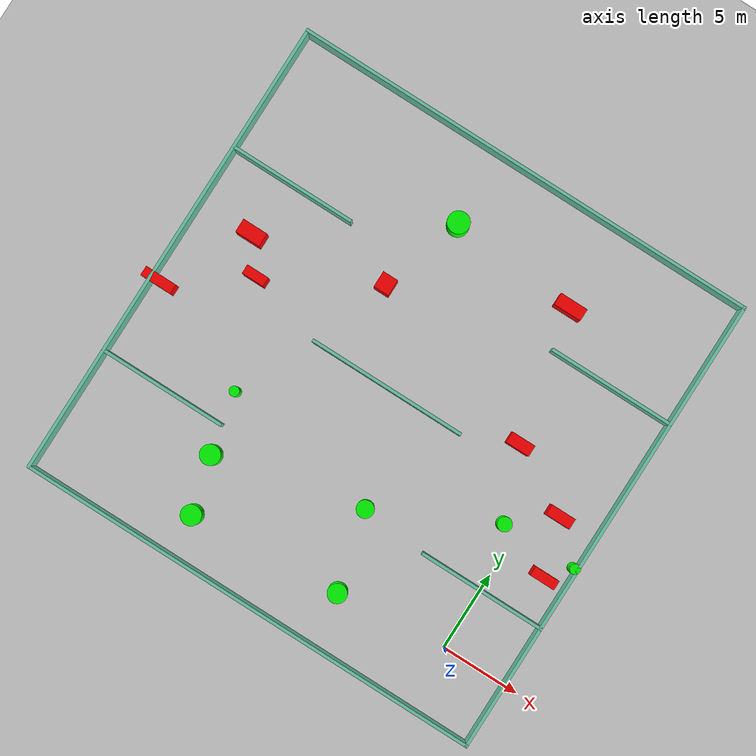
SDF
<sdf version="1.7">
 <world name="default">
  <light name="sun" type="directional">
   <pose>0 0 10 0 -0 0</pose>
   <diffuse>0.8 0.8 0.8 1</diffuse>
   <specular>0.2 0.2 0.2 1</specular>
   <attenuation>
    <range>1000</range>
    <constant>0.9</constant>
    <linear>0.01</linear>
    <quadratic>0.001</quadratic>
   </attenuation>
   <direction>-0.5 0.1 -0.9</direction>
   <spot><inner_angle>0</inner_angle><outer_angle>0</outer_angle><falloff>0</falloff></spot>
  </light>
  <model name="ground_plane">
   <static>1</static>
   <link name="link">
    <collision name="collision">
     <geometry><plane><normal>0 0 1</normal><size>100 100</size></plane></geometry>
     <surface>
      <contact><collide_bitmask>65535</collide_bitmask></contact>
      <friction><ode><mu>100</mu><mu2>50</mu2></ode></friction>
     </surface>
    </collision>
    <visual name="visual">
     <cast_shadows>0</cast_shadows>
     <geometry><plane><normal>0 0 1</normal><size>100 100</size></plane></geometry>
     <material>
      <script><uri>file://media/materials/scripts/gazebo.material</uri><name>Gazebo/Grey</name></script>
     </material>
    </visual>
   </link>
  </model>
  <gravity>0 0 -9.8</gravity>
  <magnetic_field>6e-06 2.3e-05 -4.2e-05</magnetic_field>
  <atmosphere type="adiabatic"/>
  <physics type="ode">
   <max_step_size>0.001</max_step_size>
   <real_time_factor>1</real_time_factor>
   <real_time_update_rate>1000</real_time_update_rate>
  </physics>
  <scene><ambient>0.4 0.4 0.4 1</ambient><background>0.7 0.7 0.7 1</background><shadows>1</shadows></scene>
  <spherical_coordinates>
   <surface_model>EARTH_WGS84</surface_model>
   <latitude_deg>0</latitude_deg>
   <longitude_deg>0</longitude_deg>
   <elevation>0</elevation>
   <heading_deg>0</heading_deg>
  </spherical_coordinates>
  <model name="my_base_walls">
   <link name="Wall_10">
    <collision name="Wall_10_Collision">
     <geometry><box><size>8.2 0.2 2.5</size></box></geometry>
     <pose>0 0 1.25 0 -0 0</pose>
    </collision>
    <visual name="Wall_10_Visual">
     <pose>0 0 1.25 0 -0 0</pose>
     <geometry><box><size>8.2 0.2 2.5</size></box></geometry>
     <material>
      <script><uri>file://media/materials/scripts/gazebo.material</uri><name>Gazebo/Grey</name></script>
      <ambient>0.435294 0.796078 0.67451 1</ambient>
     </material>
     <meta><layer>0</layer></meta>
    </visual>
    <pose>-11 -7 0 0 -0 0</pose>
   </link>
   <link name="Wall_12">
    <collision name="Wall_12_Collision">
     <geometry><box><size>8.2 0.2 2.5</size></box></geometry>
     <pose>0 0 1.25 0 -0 0</pose>
    </collision>
    <visual name="Wall_12_Visual">
     <pose>0 0 1.25 0 -0 0</pose>
     <geometry><box><size>8.2 0.2 2.5</size></box></geometry>
     <material>
      <script><uri>file://media/materials/scripts/gazebo.material</uri><name>Gazebo/Grey</name></script>
      <ambient>0.435294 0.796078 0.67451 1</ambient>
     </material>
     <meta><layer>0</layer></meta>
    </visual>
    <pose>-11 7 0 0 -0 0</pose>
   </link>
   <link name="Wall_14">
    <collision name="Wall_14_Collision">
     <geometry><box><size>8.2 0.2 2.5</size></box></geometry>
     <pose>0 0 1.25 0 -0 0</pose>
    </collision>
    <visual name="Wall_14_Visual">
     <pose>0 0 1.25 0 -0 0</pose>
     <geometry><box><size>8.2 0.2 2.5</size></box></geometry>
     <material>
      <script><uri>file://media/materials/scripts/gazebo.material</uri><name>Gazebo/Grey</name></script>
      <ambient>0.435294 0.796078 0.67451 1</ambient>
     </material>
     <meta><layer>0</layer></meta>
    </visual>
    <pose>11 7 0 0 -0 3.14159</pose>
   </link>
   <link name="Wall_16">
    <collision name="Wall_16_Collision">
     <geometry><box><size>10.2 0.2 2.5</size></box></geometry>
     <pose>0 0 1.25 0 -0 0</pose>
    </collision>
    <visual name="Wall_16_Visual">
     <pose>0 0 1.25 0 -0 0</pose>
     <geometry><box><size>10.2 0.2 2.5</size></box></geometry>
     <material>
      <script><uri>file://media/materials/scripts/gazebo.material</uri><name>Gazebo/Grey</name></script>
      <ambient>0.435294 0.796078 0.67451 1</ambient>
     </material>
     <meta><layer>0</layer></meta>
    </visual>
    <pose>0 0 0 0 -0 3.14159</pose>
   </link>
   <link name="Wall_2">
    <collision name="Wall_2_Collision">
     <geometry><box><size>30.2 0.2 2.5</size></box></geometry>
     <pose>0 0 1.25 0 -0 0</pose>
    </collision>
    <visual name="Wall_2_Visual">
     <pose>0 0 1.25 0 -0 0</pose>
     <geometry><box><size>30.2 0.2 2.5</size></box></geometry>
     <material>
      <script><uri>file://media/materials/scripts/gazebo.material</uri><name>Gazebo/Grey</name></script>
      <ambient>0.435294 0.796078 0.67451 1</ambient>
     </material>
     <meta><layer>0</layer></meta>
    </visual>
    <pose>0 -15 0 0 -0 3.14159</pose>
   </link>
   <link name="Wall_3">
    <collision name="Wall_3_Collision">
     <geometry><box><size>30.2 0.2 2.5</size></box></geometry>
     <pose>0 0 1.25 0 -0 0</pose>
    </collision>
    <visual name="Wall_3_Visual">
     <pose>0 0 1.25 0 -0 0</pose>
     <geometry><box><size>30.2 0.2 2.5</size></box></geometry>
     <material>
      <script><uri>file://media/materials/scripts/gazebo.material</uri><name>Gazebo/Grey</name></script>
      <ambient>0.435294 0.796078 0.67451 1</ambient>
     </material>
     <meta><layer>0</layer></meta>
    </visual>
    <pose>-15 0 0 0 -0 1.5708</pose>
   </link>
   <link name="Wall_4">
    <collision name="Wall_4_Collision">
     <geometry><box><size>30.2 0.2 2.5</size></box></geometry>
     <pose>0 0 1.25 0 -0 0</pose>
    </collision>
    <visual name="Wall_4_Visual">
     <pose>0 0 1.25 0 -0 0</pose>
     <geometry><box><size>30.2 0.2 2.5</size></box></geometry>
     <material>
      <script><uri>file://media/materials/scripts/gazebo.material</uri><name>Gazebo/Grey</name></script>
      <ambient>0.435294 0.796078 0.67451 1</ambient>
     </material>
     <meta><layer>0</layer></meta>
    </visual>
    <pose>0 15 0 0 -0 0</pose>
   </link>
   <link name="Wall_6">
    <collision name="Wall_6_Collision">
     <geometry><box><size>30.2 0.2 2.5</size></box></geometry>
     <pose>0 0 1.25 0 -0 0</pose>
    </collision>
    <visual name="Wall_6_Visual">
     <pose>0 0 1.25 0 -0 0</pose>
     <geometry><box><size>30.2 0.2 2.5</size></box></geometry>
     <material>
      <script><uri>file://media/materials/scripts/gazebo.material</uri><name>Gazebo/Grey</name></script>
      <ambient>0.435294 0.796078 0.67451 1</ambient>
     </material>
     <meta><layer>0</layer></meta>
    </visual>
    <pose>15 0 0 0 -0 1.5708</pose>
   </link>
   <link name="Wall_8">
    <collision name="Wall_8_Collision">
     <geometry><box><size>8.2 0.2 2.5</size></box></geometry>
     <pose>0 0 1.25 0 -0 0</pose>
    </collision>
    <visual name="Wall_8_Visual">
     <pose>0 0 1.25 0 -0 0</pose>
     <geometry><box><size>8.2 0.2 2.5</size></box></geometry>
     <material>
      <script><uri>file://media/materials/scripts/gazebo.material</uri><name>Gazebo/Grey</name></script>
      <ambient>0.435294 0.796078 0.67451 1</ambient>
     </material>
     <meta><layer>0</layer></meta>
    </visual>
    <pose>11 -7 0 0 -0 3.14159</pose>
   </link>
   <static>1</static>
   <pose>-11 11 0 0 -0 0</pose>
  </model>
  <model name="cylinder1">
   <static>1</static>
   <link name="link">
    <inertial>
     <mass>1</mass>
     <inertia><ixx>0.5</ixx><ixy>0</ixy><ixz>0</ixz><iyy>0.5</iyy><iyz>0</iyz><izz>1</izz></inertia>
    </inertial>
    <collision name="collision">
     <geometry><cylinder><radius>0.6346139603693233</radius><length>2.5</length></cylinder></geometry>
    </collision>
    <visual name="visual">
     <geometry><cylinder><radius>0.6346139603693233</radius><length>2.5</length></cylinder></geometry>
     <material>
      <ambient>0 1 0 1</ambient>
      <diffuse>0 1 0 1</diffuse>
      <specular>0.1 0.1 0.1 1</specular>
      <emissive>0 0 0 0</emissive>
     </material>
    </visual>
   </link>
   <pose>-16.571998340700368 -1.3238653254842028 1.25 0 0 0</pose>
  </model>
  <model name="cylinder2">
   <static>1</static>
   <link name="link">
    <inertial>
     <mass>1</mass>
     <inertia><ixx>0.5</ixx><ixy>0</ixy><ixz>0</ixz><iyy>0.5</iyy><iyz>0</iyz><izz>1</izz></inertia>
    </inertial>
    <collision name="collision">
     <geometry><cylinder><radius>0.45152356649810066</radius><length>2.5</length></cylinder></geometry>
    </collision>
    <visual name="visual">
     <geometry><cylinder><radius>0.45152356649810066</radius><length>2.5</length></cylinder></geometry>
     <material>
      <ambient>0 1 0 1</ambient>
      <diffuse>0 1 0 1</diffuse>
      <specular>0.1 0.1 0.1 1</specular>
      <emissive>0 0 0 0</emissive>
     </material>
    </visual>
   </link>
   <pose>-0.9904161919719563 7.980079243447275 1.25 0 0 0</pose>
  </model>
  <model name="cylinder3">
   <static>1</static>
   <link name="link">
    <inertial>
     <mass>1</mass>
     <inertia><ixx>0.5</ixx><ixy>0</ixy><ixz>0</ixz><iyy>0.5</iyy><iyz>0</iyz><izz>1</izz></inertia>
    </inertial>
    <collision name="collision">
     <geometry><cylinder><radius>0.3263668381568995</radius><length>2.5</length></cylinder></geometry>
    </collision>
    <visual name="visual">
     <geometry><cylinder><radius>0.3263668381568995</radius><length>2.5</length></cylinder></geometry>
     <material>
      <ambient>0 1 0 1</ambient>
      <diffuse>0 1 0 1</diffuse>
      <specular>0.1 0.1 0.1 1</specular>
      <emissive>0 0 0 0</emissive>
     </material>
    </visual>
   </link>
   <pose>3.827052140149366 7.973266102477812 1.25 0 0 0</pose>
  </model>
  <model name="cylinder4">
   <static>1</static>
   <link name="link">
    <inertial>
     <mass>1</mass>
     <inertia><ixx>0.5</ixx><ixy>0</ixy><ixz>0</ixz><iyy>0.5</iyy><iyz>0</iyz><izz>1</izz></inertia>
    </inertial>
    <collision name="collision">
     <geometry><cylinder><radius>0.54239967455031</radius><length>2.5</length></cylinder></geometry>
    </collision>
    <visual name="visual">
     <geometry><cylinder><radius>0.54239967455031</radius><length>2.5</length></cylinder></geometry>
     <material>
      <ambient>0 1 0 1</ambient>
      <diffuse>0 1 0 1</diffuse>
      <specular>0.1 0.1 0.1 1</specular>
      <emissive>0 0 0 0</emissive>
     </material>
    </visual>
   </link>
   <pose>-8.263736374935718 4.377930634792868 1.25 0 0 0</pose>
  </model>
  <model name="cylinder5">
   <static>1</static>
   <link name="link">
    <inertial>
     <mass>1</mass>
     <inertia><ixx>0.5</ixx><ixy>0</ixy><ixz>0</ixz><iyy>0.5</iyy><iyz>0</iyz><izz>1</izz></inertia>
    </inertial>
    <collision name="collision">
     <geometry><cylinder><radius>0.3141391837727115</radius><length>2.5</length></cylinder></geometry>
    </collision>
    <visual name="visual">
     <geometry><cylinder><radius>0.3141391837727115</radius><length>2.5</length></cylinder></geometry>
     <material>
      <ambient>0 1 0 1</ambient>
      <diffuse>0 1 0 1</diffuse>
      <specular>0.1 0.1 0.1 1</specular>
      <emissive>0 0 0 0</emissive>
     </material>
    </visual>
   </link>
   <pose>-18.32279944301617 6.062641862050814 1.25 0 0 0</pose>
  </model>
  <model name="cylinder6">
   <static>1</static>
   <link name="link">
    <inertial>
     <mass>1</mass>
     <inertia><ixx>0.5</ixx><ixy>0</ixy><ixz>0</ixz><iyy>0.5</iyy><iyz>0</iyz><izz>1</izz></inertia>
    </inertial>
    <collision name="collision">
     <geometry><cylinder><radius>0.6020453340713285</radius><length>2.5</length></cylinder></geometry>
    </collision>
    <visual name="visual">
     <geometry><cylinder><radius>0.6020453340713285</radius><length>2.5</length></cylinder></geometry>
     <material>
      <ambient>0 1 0 1</ambient>
      <diffuse>0 1 0 1</diffuse>
      <specular>0.1 0.1 0.1 1</specular>
      <emissive>0 0 0 0</emissive>
     </material>
    </visual>
   </link>
   <pose>-7.006150141941692 -0.5919044858297418 1.25 0 0 0</pose>
  </model>
  <model name="cylinder7">
   <static>1</static>
   <link name="link">
    <inertial>
     <mass>1</mass>
     <inertia><ixx>0.5</ixx><ixy>0</ixy><ixz>0</ixz><iyy>0.5</iyy><iyz>0</iyz><izz>1</izz></inertia>
    </inertial>
    <collision name="collision">
     <geometry><cylinder><radius>0.6895013769846164</radius><length>2.5</length></cylinder></geometry>
    </collision>
    <visual name="visual">
     <geometry><cylinder><radius>0.6895013769846164</radius><length>2.5</length></cylinder></geometry>
     <material>
      <ambient>0 1 0 1</ambient>
      <diffuse>0 1 0 1</diffuse>
      <specular>0.1 0.1 0.1 1</specular>
      <emissive>0 0 0 0</emissive>
     </material>
    </visual>
   </link>
   <pose>-12.622188816440719 21.28873632441184 1.25 0 0 0</pose>
  </model>
  <model name="cylinder8">
   <static>1</static>
   <link name="link">
    <inertial>
     <mass>1</mass>
     <inertia><ixx>0.5</ixx><ixy>0</ixy><ixz>0</ixz><iyy>0.5</iyy><iyz>0</iyz><izz>1</izz></inertia>
    </inertial>
    <collision name="collision">
     <geometry><cylinder><radius>0.6329952617301624</radius><length>2.5</length></cylinder></geometry>
    </collision>
    <visual name="visual">
     <geometry><cylinder><radius>0.6329952617301624</radius><length>2.5</length></cylinder></geometry>
     <material>
      <ambient>0 1 0 1</ambient>
      <diffuse>0 1 0 1</diffuse>
      <specular>0.1 0.1 0.1 1</specular>
      <emissive>0 0 0 0</emissive>
     </material>
    </visual>
   </link>
   <pose>-17.518286007079652 2.2073546053420348 1.25 0 0 0</pose>
  </model>
  <model name="box1">
   <static>1</static>
   <link name="link">
    <inertial>
     <mass>1</mass>
     <inertia><ixx>0.083</ixx><ixy>0</ixy><ixz>0</ixz><iyy>0.083</iyy><iyz>0</iyz><izz>0.083</izz></inertia>
    </inertial>
    <collision name="collision">
     <geometry><box><size>1.6057909070444991 0.6815243536844979 2.5</size></box></geometry>
    </collision>
    <visual name="visual">
     <geometry><box><size>1.6057909070444991 0.6815243536844979 2.5</size></box></geometry>
     <material>
      <ambient>1 0 0 1</ambient>
      <diffuse>1 0 0 1</diffuse>
      <specular>0.1 0.1 0.1 1</specular>
      <emissive>0 0 0 0</emissive>
     </material>
    </visual>
    <sensor name="my_contact" type="contact">
     <contact><collision>box_collision</collision><topic>__default_topic__</topic></contact>
    </sensor>
   </link>
   <pose>1.5104454753566259 10.078756739486984 1.25 0 0 0</pose>
  </model>
  <model name="box2">
   <static>1</static>
   <link name="link">
    <inertial>
     <mass>1</mass>
     <inertia><ixx>0.083</ixx><ixy>0</ixy><ixz>0</ixz><iyy>0.083</iyy><iyz>0</iyz><izz>0.083</izz></inertia>
    </inertial>
    <collision name="collision">
     <geometry><box><size>2.0321008207585143 0.6180543607187592 2.5</size></box></geometry>
    </collision>
    <visual name="visual">
     <geometry><box><size>2.0321008207585143 0.6180543607187592 2.5</size></box></geometry>
     <material>
      <ambient>1 0 0 1</ambient>
      <diffuse>1 0 0 1</diffuse>
      <specular>0.1 0.1 0.1 1</specular>
      <emissive>0 0 0 0</emissive>
     </material>
    </visual>
    <sensor name="my_contact" type="contact">
     <contact><collision>box_collision</collision><topic>__default_topic__</topic></contact>
    </sensor>
   </link>
   <pose>-25.504466478019157 9.127489881615418 1.25 0 0 0</pose>
  </model>
  <model name="box3">
   <static>1</static>
   <link name="link">
    <inertial>
     <mass>1</mass>
     <inertia><ixx>0.083</ixx><ixy>0</ixy><ixz>0</ixz><iyy>0.083</iyy><iyz>0</iyz><izz>0.083</izz></inertia>
    </inertial>
    <collision name="collision">
     <geometry><box><size>1.611499505487951 0.8724854681147787 2.5</size></box></geometry>
    </collision>
    <visual name="visual">
     <geometry><box><size>1.611499505487951 0.8724854681147787 2.5</size></box></geometry>
     <material>
      <ambient>1 0 0 1</ambient>
      <diffuse>1 0 0 1</diffuse>
      <specular>0.1 0.1 0.1 1</specular>
      <emissive>0 0 0 0</emissive>
     </material>
    </visual>
    <sensor name="my_contact" type="contact">
     <contact><collision>box_collision</collision><topic>__default_topic__</topic></contact>
    </sensor>
   </link>
   <pose>-22.432379274314048 14.328358544511836 1.25 0 0 0</pose>
  </model>
  <model name="box4">
   <static>1</static>
   <link name="link">
    <inertial>
     <mass>1</mass>
     <inertia><ixx>0.083</ixx><ixy>0</ixy><ixz>0</ixz><iyy>0.083</iyy><iyz>0</iyz><izz>0.083</izz></inertia>
    </inertial>
    <collision name="collision">
     <geometry><box><size>0.9893468385382376 1.041177000742564 2.5</size></box></geometry>
    </collision>
    <visual name="visual">
     <geometry><box><size>0.9893468385382376 1.041177000742564 2.5</size></box></geometry>
     <material>
      <ambient>1 0 0 1</ambient>
      <diffuse>1 0 0 1</diffuse>
      <specular>0.1 0.1 0.1 1</specular>
      <emissive>0 0 0 0</emissive>
     </material>
    </visual>
    <sensor name="my_contact" type="contact">
     <contact><collision>box_collision</collision><topic>__default_topic__</topic></contact>
    </sensor>
   </link>
   <pose>-14.276775703881533 16.03733064699001 1.25 0 0 0</pose>
  </model>
  <model name="box5">
   <static>1</static>
   <link name="link">
    <inertial>
     <mass>1</mass>
     <inertia><ixx>0.083</ixx><ixy>0</ixy><ixz>0</ixz><iyy>0.083</iyy><iyz>0</iyz><izz>0.083</izz></inertia>
    </inertial>
    <collision name="collision">
     <geometry><box><size>1.6191367735722701 0.6068481923277689 2.5</size></box></geometry>
    </collision>
    <visual name="visual">
     <geometry><box><size>1.6191367735722701 0.6068481923277689 2.5</size></box></geometry>
     <material>
      <ambient>1 0 0 1</ambient>
      <diffuse>1 0 0 1</diffuse>
      <specular>0.1 0.1 0.1 1</specular>
      <emissive>0 0 0 0</emissive>
     </material>
    </visual>
    <sensor name="my_contact" type="contact">
     <contact><collision>box_collision</collision><topic>__default_topic__</topic></contact>
    </sensor>
   </link>
   <pose>2.629550345867173 6.597442012418362 1.25 0 0 0</pose>
  </model>
  <model name="box6">
   <static>1</static>
   <link name="link">
    <inertial>
     <mass>1</mass>
     <inertia><ixx>0.083</ixx><ixy>0</ixy><ixz>0</ixz><iyy>0.083</iyy><iyz>0</iyz><izz>0.083</izz></inertia>
    </inertial>
    <collision name="collision">
     <geometry><box><size>1.785522412076753 0.7741349392871488 2.5</size></box></geometry>
    </collision>
    <visual name="visual">
     <geometry><box><size>1.785522412076753 0.7741349392871488 2.5</size></box></geometry>
     <material>
      <ambient>1 0 0 1</ambient>
      <diffuse>1 0 0 1</diffuse>
      <specular>0.1 0.1 0.1 1</specular>
      <emissive>0 0 0 0</emissive>
     </material>
    </visual>
    <sensor name="my_contact" type="contact">
     <contact><collision>box_collision</collision><topic>__default_topic__</topic></contact>
    </sensor>
   </link>
   <pose>-4.509183456517064 20.644201062132485 1.25 0 0 0</pose>
  </model>
  <model name="box7">
   <static>1</static>
   <link name="link">
    <inertial>
     <mass>1</mass>
     <inertia><ixx>0.083</ixx><ixy>0</ixy><ixz>0</ixz><iyy>0.083</iyy><iyz>0</iyz><izz>0.083</izz></inertia>
    </inertial>
    <collision name="collision">
     <geometry><box><size>1.5444096600650512 0.7163785902883926 2.5</size></box></geometry>
    </collision>
    <visual name="visual">
     <geometry><box><size>1.5444096600650512 0.7163785902883926 2.5</size></box></geometry>
     <material>
      <ambient>1 0 0 1</ambient>
      <diffuse>1 0 0 1</diffuse>
      <specular>0.1 0.1 0.1 1</specular>
      <emissive>0 0 0 0</emissive>
     </material>
    </visual>
    <sensor name="my_contact" type="contact">
     <contact><collision>box_collision</collision><topic>__default_topic__</topic></contact>
    </sensor>
   </link>
   <pose>-2.6975060113642613 12.38390030724078 1.25 0 0 0</pose>
  </model>
  <model name="box8">
   <static>1</static>
   <link name="link">
    <inertial>
     <mass>1</mass>
     <inertia><ixx>0.083</ixx><ixy>0</ixy><ixz>0</ixz><iyy>0.083</iyy><iyz>0</iyz><izz>0.083</izz></inertia>
    </inertial>
    <collision name="collision">
     <geometry><box><size>1.432880003879831 0.5888742930722181 2.5</size></box></geometry>
    </collision>
    <visual name="visual">
     <geometry><box><size>1.432880003879831 0.5888742930722181 2.5</size></box></geometry>
     <material>
      <ambient>1 0 0 1</ambient>
      <diffuse>1 0 0 1</diffuse>
      <specular>0.1 0.1 0.1 1</specular>
      <emissive>0 0 0 0</emissive>
     </material>
    </visual>
    <sensor name="my_contact" type="contact">
     <contact><collision>box_collision</collision><topic>__default_topic__</topic></contact>
    </sensor>
   </link>
   <pose>-20.903354025980516 12.361500872811483 1.25 0 0 0</pose>
  </model>
 </world>
</sdf>
